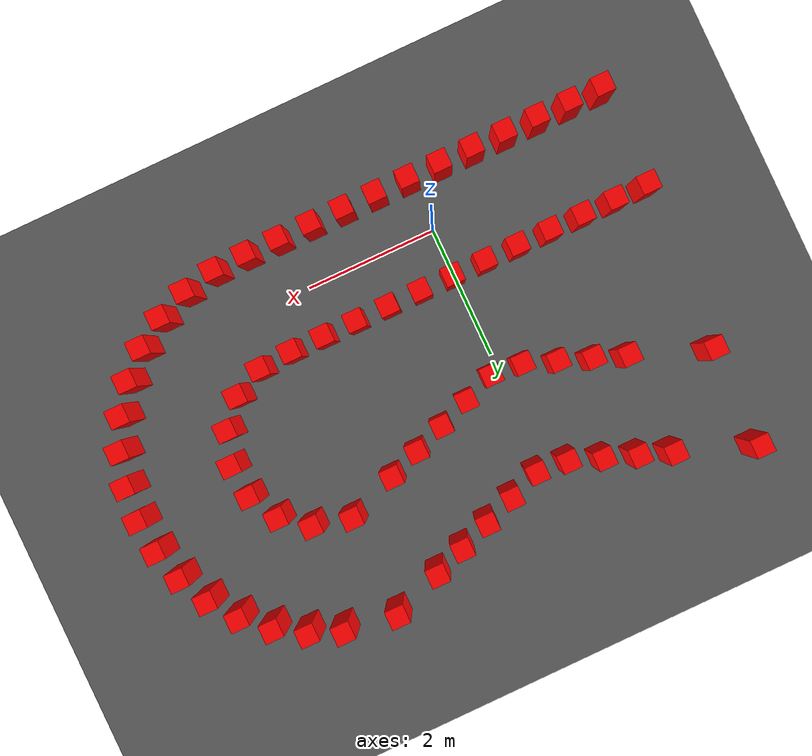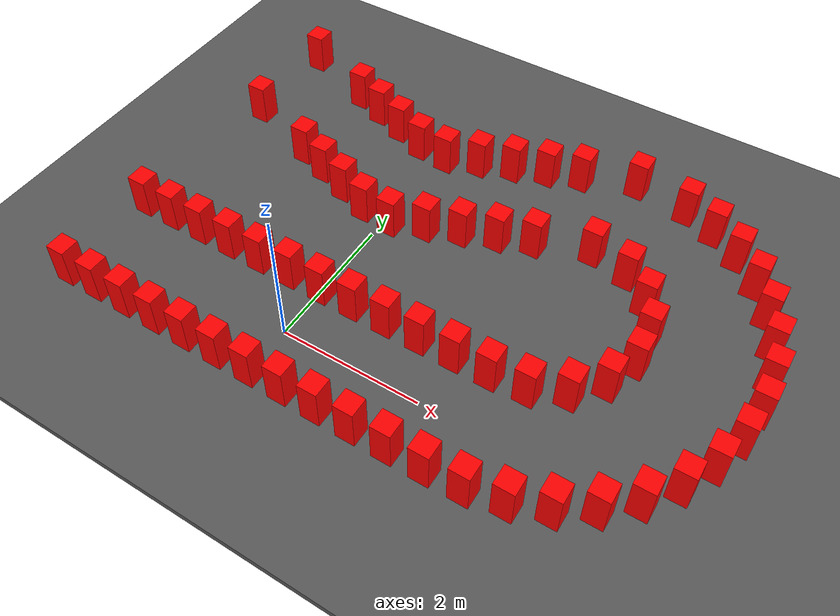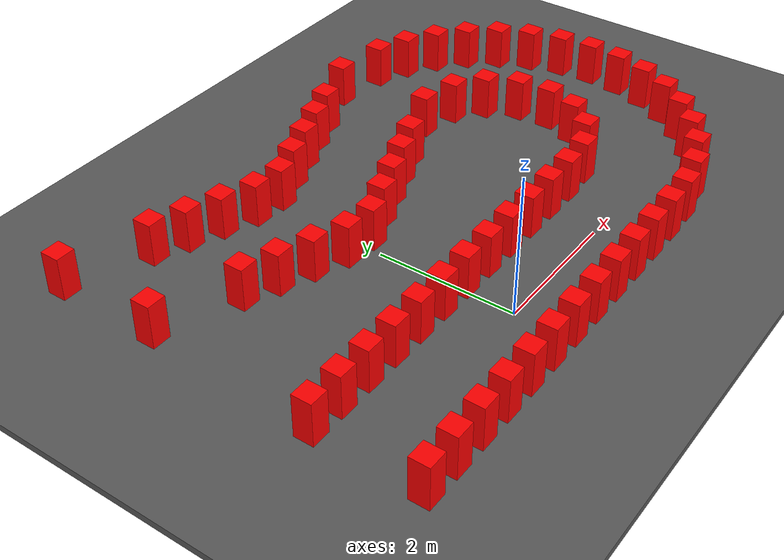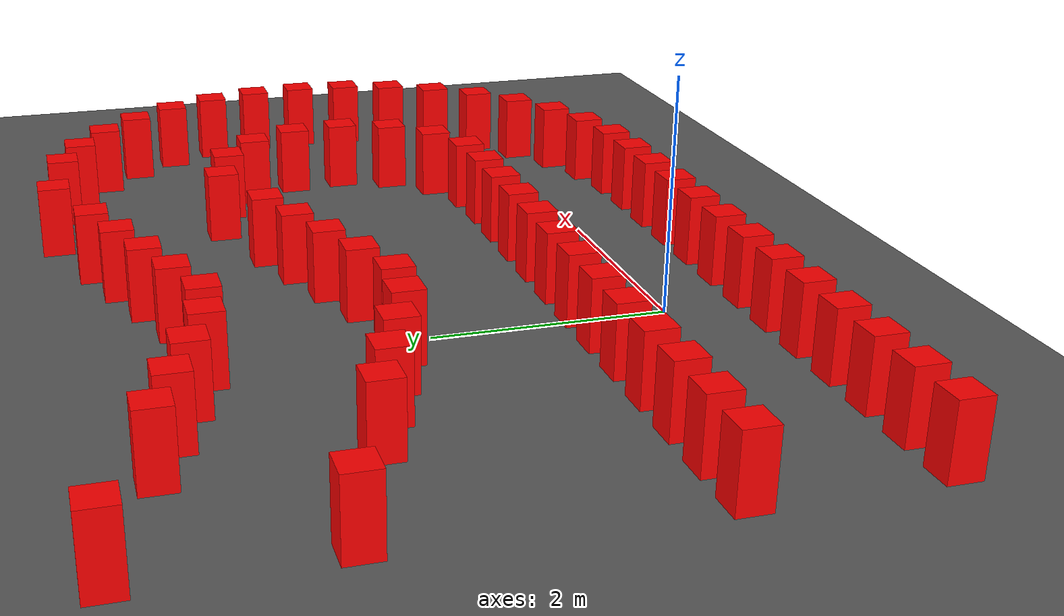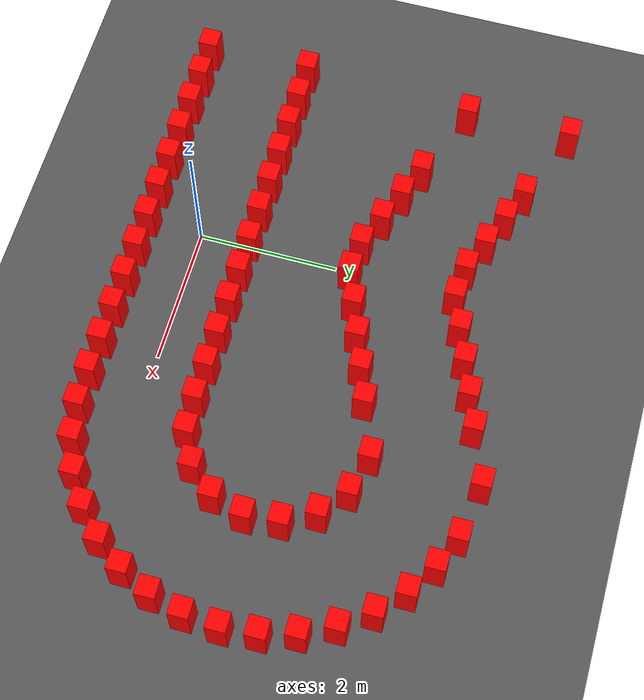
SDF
<sdf version="1.6">
 <world name="prototype">
  <model name="ground">
   <static>true</static>
   <pose>0 0 -0.05 0 0 0</pose>
   <link name="body">
    <visual name="visual">
     <geometry><box><size>200 200 0.1</size></box></geometry>
     <material><ambient>.35 .35 .35 1</ambient><diffuse>.35 .35 .35 1</diffuse></material>
    </visual>
    <collision name="collision"><geometry><box><size>200 200 0.1</size></box></geometry></collision>
   </link>
  </model>
  <model name="cone_proxy_c11">
   <static>true</static>
   <pose>-2.9774 -0.7559 0.315 0 0 0</pose>
   <link name="body">
    <visual name="visual">
     <geometry><box><size>.28 .28 .63</size></box></geometry>
     <material><ambient>1 0 0 1</ambient><diffuse>1 0 0 1</diffuse></material>
    </visual>
    <collision name="collision"><geometry><box><size>.28 .28 .63</size></box></geometry></collision>
   </link>
  </model>
  <model name="cone_proxy_c12">
   <static>true</static>
   <pose>-2.4734 -0.7559 0.315 0 0 0</pose>
   <link name="body">
    <visual name="visual">
     <geometry><box><size>.28 .28 .63</size></box></geometry>
     <material><ambient>1 0 0 1</ambient><diffuse>1 0 0 1</diffuse></material>
    </visual>
    <collision name="collision"><geometry><box><size>.28 .28 .63</size></box></geometry></collision>
   </link>
  </model>
  <model name="cone_proxy_c13">
   <static>true</static>
   <pose>-1.9695 -0.7559 0.315 0 0 0</pose>
   <link name="body">
    <visual name="visual">
     <geometry><box><size>.28 .28 .63</size></box></geometry>
     <material><ambient>1 0 0 1</ambient><diffuse>1 0 0 1</diffuse></material>
    </visual>
    <collision name="collision"><geometry><box><size>.28 .28 .63</size></box></geometry></collision>
   </link>
  </model>
  <model name="cone_proxy_c14">
   <static>true</static>
   <pose>-1.4655 -0.7559 0.315 0 0 0</pose>
   <link name="body">
    <visual name="visual">
     <geometry><box><size>.28 .28 .63</size></box></geometry>
     <material><ambient>1 0 0 1</ambient><diffuse>1 0 0 1</diffuse></material>
    </visual>
    <collision name="collision"><geometry><box><size>.28 .28 .63</size></box></geometry></collision>
   </link>
  </model>
  <model name="cone_proxy_c15">
   <static>true</static>
   <pose>-0.9616 -0.7559 0.315 0 0 0</pose>
   <link name="body">
    <visual name="visual">
     <geometry><box><size>.28 .28 .63</size></box></geometry>
     <material><ambient>1 0 0 1</ambient><diffuse>1 0 0 1</diffuse></material>
    </visual>
    <collision name="collision"><geometry><box><size>.28 .28 .63</size></box></geometry></collision>
   </link>
  </model>
  <model name="cone_proxy_c16">
   <static>true</static>
   <pose>-0.4576 -0.7559 0.315 0 0 0</pose>
   <link name="body">
    <visual name="visual">
     <geometry><box><size>.28 .28 .63</size></box></geometry>
     <material><ambient>1 0 0 1</ambient><diffuse>1 0 0 1</diffuse></material>
    </visual>
    <collision name="collision"><geometry><box><size>.28 .28 .63</size></box></geometry></collision>
   </link>
  </model>
  <model name="cone_proxy_c17">
   <static>true</static>
   <pose>0.0463 -0.7559 0.315 0 0 0</pose>
   <link name="body">
    <visual name="visual">
     <geometry><box><size>.28 .28 .63</size></box></geometry>
     <material><ambient>1 0 0 1</ambient><diffuse>1 0 0 1</diffuse></material>
    </visual>
    <collision name="collision"><geometry><box><size>.28 .28 .63</size></box></geometry></collision>
   </link>
  </model>
  <model name="cone_proxy_c18">
   <static>true</static>
   <pose>0.5502 -0.7559 0.315 0 0 0</pose>
   <link name="body">
    <visual name="visual">
     <geometry><box><size>.28 .28 .63</size></box></geometry>
     <material><ambient>1 0 0 1</ambient><diffuse>1 0 0 1</diffuse></material>
    </visual>
    <collision name="collision"><geometry><box><size>.28 .28 .63</size></box></geometry></collision>
   </link>
  </model>
  <model name="cone_proxy_c19">
   <static>true</static>
   <pose>1.0542 -0.7559 0.315 0 0 0</pose>
   <link name="body">
    <visual name="visual">
     <geometry><box><size>.28 .28 .63</size></box></geometry>
     <material><ambient>1 0 0 1</ambient><diffuse>1 0 0 1</diffuse></material>
    </visual>
    <collision name="collision"><geometry><box><size>.28 .28 .63</size></box></geometry></collision>
   </link>
  </model>
  <model name="cone_proxy_c20">
   <static>true</static>
   <pose>1.5581 -0.7559 0.315 0 0 0</pose>
   <link name="body">
    <visual name="visual">
     <geometry><box><size>.28 .28 .63</size></box></geometry>
     <material><ambient>1 0 0 1</ambient><diffuse>1 0 0 1</diffuse></material>
    </visual>
    <collision name="collision"><geometry><box><size>.28 .28 .63</size></box></geometry></collision>
   </link>
  </model>
  <model name="cone_proxy_c21">
   <static>true</static>
   <pose>2.0621 -0.7559 0.315 0 0 0</pose>
   <link name="body">
    <visual name="visual">
     <geometry><box><size>.28 .28 .63</size></box></geometry>
     <material><ambient>1 0 0 1</ambient><diffuse>1 0 0 1</diffuse></material>
    </visual>
    <collision name="collision"><geometry><box><size>.28 .28 .63</size></box></geometry></collision>
   </link>
  </model>
  <model name="cone_proxy_c22">
   <static>true</static>
   <pose>2.5660 -0.7559 0.315 0 0 0</pose>
   <link name="body">
    <visual name="visual">
     <geometry><box><size>.28 .28 .63</size></box></geometry>
     <material><ambient>1 0 0 1</ambient><diffuse>1 0 0 1</diffuse></material>
    </visual>
    <collision name="collision"><geometry><box><size>.28 .28 .63</size></box></geometry></collision>
   </link>
  </model>
  <model name="cone_proxy_c23">
   <static>true</static>
   <pose>3.0693 -0.7380 0.315 0 0 0</pose>
   <link name="body">
    <visual name="visual">
     <geometry><box><size>.28 .28 .63</size></box></geometry>
     <material><ambient>1 0 0 1</ambient><diffuse>1 0 0 1</diffuse></material>
    </visual>
    <collision name="collision"><geometry><box><size>.28 .28 .63</size></box></geometry></collision>
   </link>
  </model>
  <model name="cone_proxy_c24">
   <static>true</static>
   <pose>3.5624 -0.6387 0.315 0 0 0</pose>
   <link name="body">
    <visual name="visual">
     <geometry><box><size>.28 .28 .63</size></box></geometry>
     <material><ambient>1 0 0 1</ambient><diffuse>1 0 0 1</diffuse></material>
    </visual>
    <collision name="collision"><geometry><box><size>.28 .28 .63</size></box></geometry></collision>
   </link>
  </model>
  <model name="cone_proxy_c25">
   <static>true</static>
   <pose>4.0291 -0.4506 0.315 0 0 0</pose>
   <link name="body">
    <visual name="visual">
     <geometry><box><size>.28 .28 .63</size></box></geometry>
     <material><ambient>1 0 0 1</ambient><diffuse>1 0 0 1</diffuse></material>
    </visual>
    <collision name="collision"><geometry><box><size>.28 .28 .63</size></box></geometry></collision>
   </link>
  </model>
  <model name="cone_proxy_c26">
   <static>true</static>
   <pose>4.4535 -0.1804 0.315 0 0 0</pose>
   <link name="body">
    <visual name="visual">
     <geometry><box><size>.28 .28 .63</size></box></geometry>
     <material><ambient>1 0 0 1</ambient><diffuse>1 0 0 1</diffuse></material>
    </visual>
    <collision name="collision"><geometry><box><size>.28 .28 .63</size></box></geometry></collision>
   </link>
  </model>
  <model name="cone_proxy_c27">
   <static>true</static>
   <pose>4.8231 0.1610 0.315 0 0 0</pose>
   <link name="body">
    <visual name="visual">
     <geometry><box><size>.28 .28 .63</size></box></geometry>
     <material><ambient>1 0 0 1</ambient><diffuse>1 0 0 1</diffuse></material>
    </visual>
    <collision name="collision"><geometry><box><size>.28 .28 .63</size></box></geometry></collision>
   </link>
  </model>
  <model name="cone_proxy_c28">
   <static>true</static>
   <pose>5.1222 0.5657 0.315 0 0 0</pose>
   <link name="body">
    <visual name="visual">
     <geometry><box><size>.28 .28 .63</size></box></geometry>
     <material><ambient>1 0 0 1</ambient><diffuse>1 0 0 1</diffuse></material>
    </visual>
    <collision name="collision"><geometry><box><size>.28 .28 .63</size></box></geometry></collision>
   </link>
  </model>
  <model name="cone_proxy_c29">
   <static>true</static>
   <pose>5.3440 1.0172 0.315 0 0 0</pose>
   <link name="body">
    <visual name="visual">
     <geometry><box><size>.28 .28 .63</size></box></geometry>
     <material><ambient>1 0 0 1</ambient><diffuse>1 0 0 1</diffuse></material>
    </visual>
    <collision name="collision"><geometry><box><size>.28 .28 .63</size></box></geometry></collision>
   </link>
  </model>
  <model name="cone_proxy_c30">
   <static>true</static>
   <pose>5.4806 1.5015 0.315 0 0 0</pose>
   <link name="body">
    <visual name="visual">
     <geometry><box><size>.28 .28 .63</size></box></geometry>
     <material><ambient>1 0 0 1</ambient><diffuse>1 0 0 1</diffuse></material>
    </visual>
    <collision name="collision"><geometry><box><size>.28 .28 .63</size></box></geometry></collision>
   </link>
  </model>
  <model name="cone_proxy_c31">
   <static>true</static>
   <pose>5.5250 2.0027 0.315 0 0 0</pose>
   <link name="body">
    <visual name="visual">
     <geometry><box><size>.28 .28 .63</size></box></geometry>
     <material><ambient>1 0 0 1</ambient><diffuse>1 0 0 1</diffuse></material>
    </visual>
    <collision name="collision"><geometry><box><size>.28 .28 .63</size></box></geometry></collision>
   </link>
  </model>
  <model name="cone_proxy_c32">
   <static>true</static>
   <pose>5.4795 2.5037 0.315 0 0 0</pose>
   <link name="body">
    <visual name="visual">
     <geometry><box><size>.28 .28 .63</size></box></geometry>
     <material><ambient>1 0 0 1</ambient><diffuse>1 0 0 1</diffuse></material>
    </visual>
    <collision name="collision"><geometry><box><size>.28 .28 .63</size></box></geometry></collision>
   </link>
  </model>
  <model name="cone_proxy_c33">
   <static>true</static>
   <pose>5.3422 2.9878 0.315 0 0 0</pose>
   <link name="body">
    <visual name="visual">
     <geometry><box><size>.28 .28 .63</size></box></geometry>
     <material><ambient>1 0 0 1</ambient><diffuse>1 0 0 1</diffuse></material>
    </visual>
    <collision name="collision"><geometry><box><size>.28 .28 .63</size></box></geometry></collision>
   </link>
  </model>
  <model name="cone_proxy_c34">
   <static>true</static>
   <pose>5.1194 3.4388 0.315 0 0 0</pose>
   <link name="body">
    <visual name="visual">
     <geometry><box><size>.28 .28 .63</size></box></geometry>
     <material><ambient>1 0 0 1</ambient><diffuse>1 0 0 1</diffuse></material>
    </visual>
    <collision name="collision"><geometry><box><size>.28 .28 .63</size></box></geometry></collision>
   </link>
  </model>
  <model name="cone_proxy_c35">
   <static>true</static>
   <pose>4.8197 3.8430 0.315 0 0 0</pose>
   <link name="body">
    <visual name="visual">
     <geometry><box><size>.28 .28 .63</size></box></geometry>
     <material><ambient>1 0 0 1</ambient><diffuse>1 0 0 1</diffuse></material>
    </visual>
    <collision name="collision"><geometry><box><size>.28 .28 .63</size></box></geometry></collision>
   </link>
  </model>
  <model name="cone_proxy_c36">
   <static>true</static>
   <pose>4.4494 4.1837 0.315 0 0 0</pose>
   <link name="body">
    <visual name="visual">
     <geometry><box><size>.28 .28 .63</size></box></geometry>
     <material><ambient>1 0 0 1</ambient><diffuse>1 0 0 1</diffuse></material>
    </visual>
    <collision name="collision"><geometry><box><size>.28 .28 .63</size></box></geometry></collision>
   </link>
  </model>
  <model name="cone_proxy_c37">
   <static>true</static>
   <pose>4.0244 4.4530 0.315 0 0 0</pose>
   <link name="body">
    <visual name="visual">
     <geometry><box><size>.28 .28 .63</size></box></geometry>
     <material><ambient>1 0 0 1</ambient><diffuse>1 0 0 1</diffuse></material>
    </visual>
    <collision name="collision"><geometry><box><size>.28 .28 .63</size></box></geometry></collision>
   </link>
  </model>
  <model name="cone_proxy_c38">
   <static>true</static>
   <pose>3.5575 4.6404 0.315 0 0 0</pose>
   <link name="body">
    <visual name="visual">
     <geometry><box><size>.28 .28 .63</size></box></geometry>
     <material><ambient>1 0 0 1</ambient><diffuse>1 0 0 1</diffuse></material>
    </visual>
    <collision name="collision"><geometry><box><size>.28 .28 .63</size></box></geometry></collision>
   </link>
  </model>
  <model name="cone_proxy_c39">
   <static>true</static>
   <pose>2.7707 4.7560 0.315 0 0 0</pose>
   <link name="body">
    <visual name="visual">
     <geometry><box><size>.28 .28 .63</size></box></geometry>
     <material><ambient>1 0 0 1</ambient><diffuse>1 0 0 1</diffuse></material>
    </visual>
    <collision name="collision"><geometry><box><size>.28 .28 .63</size></box></geometry></collision>
   </link>
  </model>
  <model name="cone_proxy_c40">
   <static>true</static>
   <pose>-2.8514 4.7560 0.315 0 0 0</pose>
   <link name="body">
    <visual name="visual">
     <geometry><box><size>.28 .28 .63</size></box></geometry>
     <material><ambient>1 0 0 1</ambient><diffuse>1 0 0 1</diffuse></material>
    </visual>
    <collision name="collision"><geometry><box><size>.28 .28 .63</size></box></geometry></collision>
   </link>
  </model>
  <model name="cone_proxy_c80">
   <static>true</static>
   <pose>-2.9774 0.7559 0.315 0 0 0</pose>
   <link name="body">
    <visual name="visual">
     <geometry><box><size>.28 .28 .63</size></box></geometry>
     <material><ambient>1 0 0 1</ambient><diffuse>1 0 0 1</diffuse></material>
    </visual>
    <collision name="collision"><geometry><box><size>.28 .28 .63</size></box></geometry></collision>
   </link>
  </model>
  <model name="cone_proxy_c81">
   <static>true</static>
   <pose>-2.4734 0.7559 0.315 0 0 0</pose>
   <link name="body">
    <visual name="visual">
     <geometry><box><size>.28 .28 .63</size></box></geometry>
     <material><ambient>1 0 0 1</ambient><diffuse>1 0 0 1</diffuse></material>
    </visual>
    <collision name="collision"><geometry><box><size>.28 .28 .63</size></box></geometry></collision>
   </link>
  </model>
  <model name="cone_proxy_c82">
   <static>true</static>
   <pose>-1.9695 0.7559 0.315 0 0 0</pose>
   <link name="body">
    <visual name="visual">
     <geometry><box><size>.28 .28 .63</size></box></geometry>
     <material><ambient>1 0 0 1</ambient><diffuse>1 0 0 1</diffuse></material>
    </visual>
    <collision name="collision"><geometry><box><size>.28 .28 .63</size></box></geometry></collision>
   </link>
  </model>
  <model name="cone_proxy_c83">
   <static>true</static>
   <pose>-1.4655 0.7559 0.315 0 0 0</pose>
   <link name="body">
    <visual name="visual">
     <geometry><box><size>.28 .28 .63</size></box></geometry>
     <material><ambient>1 0 0 1</ambient><diffuse>1 0 0 1</diffuse></material>
    </visual>
    <collision name="collision"><geometry><box><size>.28 .28 .63</size></box></geometry></collision>
   </link>
  </model>
  <model name="cone_proxy_c84">
   <static>true</static>
   <pose>-0.9616 0.7559 0.315 0 0 0</pose>
   <link name="body">
    <visual name="visual">
     <geometry><box><size>.28 .28 .63</size></box></geometry>
     <material><ambient>1 0 0 1</ambient><diffuse>1 0 0 1</diffuse></material>
    </visual>
    <collision name="collision"><geometry><box><size>.28 .28 .63</size></box></geometry></collision>
   </link>
  </model>
  <model name="cone_proxy_c85">
   <static>true</static>
   <pose>-0.4576 0.7559 0.315 0 0 0</pose>
   <link name="body">
    <visual name="visual">
     <geometry><box><size>.28 .28 .63</size></box></geometry>
     <material><ambient>1 0 0 1</ambient><diffuse>1 0 0 1</diffuse></material>
    </visual>
    <collision name="collision"><geometry><box><size>.28 .28 .63</size></box></geometry></collision>
   </link>
  </model>
  <model name="cone_proxy_c86">
   <static>true</static>
   <pose>0.0463 0.7559 0.315 0 0 0</pose>
   <link name="body">
    <visual name="visual">
     <geometry><box><size>.28 .28 .63</size></box></geometry>
     <material><ambient>1 0 0 1</ambient><diffuse>1 0 0 1</diffuse></material>
    </visual>
    <collision name="collision"><geometry><box><size>.28 .28 .63</size></box></geometry></collision>
   </link>
  </model>
  <model name="cone_proxy_c87">
   <static>true</static>
   <pose>0.5502 0.7559 0.315 0 0 0</pose>
   <link name="body">
    <visual name="visual">
     <geometry><box><size>.28 .28 .63</size></box></geometry>
     <material><ambient>1 0 0 1</ambient><diffuse>1 0 0 1</diffuse></material>
    </visual>
    <collision name="collision"><geometry><box><size>.28 .28 .63</size></box></geometry></collision>
   </link>
  </model>
  <model name="cone_proxy_c88">
   <static>true</static>
   <pose>1.0542 0.7559 0.315 0 0 0</pose>
   <link name="body">
    <visual name="visual">
     <geometry><box><size>.28 .28 .63</size></box></geometry>
     <material><ambient>1 0 0 1</ambient><diffuse>1 0 0 1</diffuse></material>
    </visual>
    <collision name="collision"><geometry><box><size>.28 .28 .63</size></box></geometry></collision>
   </link>
  </model>
  <model name="cone_proxy_c89">
   <static>true</static>
   <pose>1.5581 0.7559 0.315 0 0 0</pose>
   <link name="body">
    <visual name="visual">
     <geometry><box><size>.28 .28 .63</size></box></geometry>
     <material><ambient>1 0 0 1</ambient><diffuse>1 0 0 1</diffuse></material>
    </visual>
    <collision name="collision"><geometry><box><size>.28 .28 .63</size></box></geometry></collision>
   </link>
  </model>
  <model name="cone_proxy_c90">
   <static>true</static>
   <pose>2.0621 0.7559 0.315 0 0 0</pose>
   <link name="body">
    <visual name="visual">
     <geometry><box><size>.28 .28 .63</size></box></geometry>
     <material><ambient>1 0 0 1</ambient><diffuse>1 0 0 1</diffuse></material>
    </visual>
    <collision name="collision"><geometry><box><size>.28 .28 .63</size></box></geometry></collision>
   </link>
  </model>
  <model name="cone_proxy_c91">
   <static>true</static>
   <pose>2.5660 0.7559 0.315 0 0 0</pose>
   <link name="body">
    <visual name="visual">
     <geometry><box><size>.28 .28 .63</size></box></geometry>
     <material><ambient>1 0 0 1</ambient><diffuse>1 0 0 1</diffuse></material>
    </visual>
    <collision name="collision"><geometry><box><size>.28 .28 .63</size></box></geometry></collision>
   </link>
  </model>
  <model name="cone_proxy_c92">
   <static>true</static>
   <pose>3.0670 0.7925 0.315 0 0 0</pose>
   <link name="body">
    <visual name="visual">
     <geometry><box><size>.28 .28 .63</size></box></geometry>
     <material><ambient>1 0 0 1</ambient><diffuse>1 0 0 1</diffuse></material>
    </visual>
    <collision name="collision"><geometry><box><size>.28 .28 .63</size></box></geometry></collision>
   </link>
  </model>
  <model name="cone_proxy_c93">
   <static>true</static>
   <pose>3.5190 1.0068 0.315 0 0 0</pose>
   <link name="body">
    <visual name="visual">
     <geometry><box><size>.28 .28 .63</size></box></geometry>
     <material><ambient>1 0 0 1</ambient><diffuse>1 0 0 1</diffuse></material>
    </visual>
    <collision name="collision"><geometry><box><size>.28 .28 .63</size></box></geometry></collision>
   </link>
  </model>
  <model name="cone_proxy_c94">
   <static>true</static>
   <pose>3.8503 1.3820 0.315 0 0 0</pose>
   <link name="body">
    <visual name="visual">
     <geometry><box><size>.28 .28 .63</size></box></geometry>
     <material><ambient>1 0 0 1</ambient><diffuse>1 0 0 1</diffuse></material>
    </visual>
    <collision name="collision"><geometry><box><size>.28 .28 .63</size></box></geometry></collision>
   </link>
  </model>
  <model name="cone_proxy_c95">
   <static>true</static>
   <pose>4.0063 1.8576 0.315 0 0 0</pose>
   <link name="body">
    <visual name="visual">
     <geometry><box><size>.28 .28 .63</size></box></geometry>
     <material><ambient>1 0 0 1</ambient><diffuse>1 0 0 1</diffuse></material>
    </visual>
    <collision name="collision"><geometry><box><size>.28 .28 .63</size></box></geometry></collision>
   </link>
  </model>
  <model name="cone_proxy_c96">
   <static>true</static>
   <pose>3.9621 2.3560 0.315 0 0 0</pose>
   <link name="body">
    <visual name="visual">
     <geometry><box><size>.28 .28 .63</size></box></geometry>
     <material><ambient>1 0 0 1</ambient><diffuse>1 0 0 1</diffuse></material>
    </visual>
    <collision name="collision"><geometry><box><size>.28 .28 .63</size></box></geometry></collision>
   </link>
  </model>
  <model name="cone_proxy_c97">
   <static>true</static>
   <pose>3.7253 2.7967 0.315 0 0 0</pose>
   <link name="body">
    <visual name="visual">
     <geometry><box><size>.28 .28 .63</size></box></geometry>
     <material><ambient>1 0 0 1</ambient><diffuse>1 0 0 1</diffuse></material>
    </visual>
    <collision name="collision"><geometry><box><size>.28 .28 .63</size></box></geometry></collision>
   </link>
  </model>
  <model name="cone_proxy_c98">
   <static>true</static>
   <pose>3.3341 3.1086 0.315 0 0 0</pose>
   <link name="body">
    <visual name="visual">
     <geometry><box><size>.28 .28 .63</size></box></geometry>
     <material><ambient>1 0 0 1</ambient><diffuse>1 0 0 1</diffuse></material>
    </visual>
    <collision name="collision"><geometry><box><size>.28 .28 .63</size></box></geometry></collision>
   </link>
  </model>
  <model name="cone_proxy_c99">
   <static>true</static>
   <pose>2.7707 3.2441 0.315 0 0 0</pose>
   <link name="body">
    <visual name="visual">
     <geometry><box><size>.28 .28 .63</size></box></geometry>
     <material><ambient>1 0 0 1</ambient><diffuse>1 0 0 1</diffuse></material>
    </visual>
    <collision name="collision"><geometry><box><size>.28 .28 .63</size></box></geometry></collision>
   </link>
  </model>
  <model name="cone_proxy_c100">
   <static>true</static>
   <pose>-2.8514 3.2441 0.315 0 0 0</pose>
   <link name="body">
    <visual name="visual">
     <geometry><box><size>.28 .28 .63</size></box></geometry>
     <material><ambient>1 0 0 1</ambient><diffuse>1 0 0 1</diffuse></material>
    </visual>
    <collision name="collision"><geometry><box><size>.28 .28 .63</size></box></geometry></collision>
   </link>
  </model>
  <model name="cone_proxy_c120">
   <static>true</static>
   <pose>2.0199 4.4733 0.315 0 0 0</pose>
   <link name="body">
    <visual name="visual">
     <geometry><box><size>.28 .28 .63</size></box></geometry>
     <material><ambient>1 0 0 1</ambient><diffuse>1 0 0 1</diffuse></material>
    </visual>
    <collision name="collision"><geometry><box><size>.28 .28 .63</size></box></geometry></collision>
   </link>
  </model>
  <model name="cone_proxy_c121">
   <static>true</static>
   <pose>1.5520 4.2972 0.315 0 0 0</pose>
   <link name="body">
    <visual name="visual">
     <geometry><box><size>.28 .28 .63</size></box></geometry>
     <material><ambient>1 0 0 1</ambient><diffuse>1 0 0 1</diffuse></material>
    </visual>
    <collision name="collision"><geometry><box><size>.28 .28 .63</size></box></geometry></collision>
   </link>
  </model>
  <model name="cone_proxy_c122">
   <static>true</static>
   <pose>1.0840 4.1211 0.315 0 0 0</pose>
   <link name="body">
    <visual name="visual">
     <geometry><box><size>.28 .28 .63</size></box></geometry>
     <material><ambient>1 0 0 1</ambient><diffuse>1 0 0 1</diffuse></material>
    </visual>
    <collision name="collision"><geometry><box><size>.28 .28 .63</size></box></geometry></collision>
   </link>
  </model>
  <model name="cone_proxy_c123">
   <static>true</static>
   <pose>0.6161 3.9450 0.315 0 0 0</pose>
   <link name="body">
    <visual name="visual">
     <geometry><box><size>.28 .28 .63</size></box></geometry>
     <material><ambient>1 0 0 1</ambient><diffuse>1 0 0 1</diffuse></material>
    </visual>
    <collision name="collision"><geometry><box><size>.28 .28 .63</size></box></geometry></collision>
   </link>
  </model>
  <model name="cone_proxy_c124">
   <static>true</static>
   <pose>0.1481 3.7688 0.315 0 0 0</pose>
   <link name="body">
    <visual name="visual">
     <geometry><box><size>.28 .28 .63</size></box></geometry>
     <material><ambient>1 0 0 1</ambient><diffuse>1 0 0 1</diffuse></material>
    </visual>
    <collision name="collision"><geometry><box><size>.28 .28 .63</size></box></geometry></collision>
   </link>
  </model>
  <model name="cone_proxy_c125">
   <static>true</static>
   <pose>-0.3200 3.8085 0.315 0 0 0</pose>
   <link name="body">
    <visual name="visual">
     <geometry><box><size>.28 .28 .63</size></box></geometry>
     <material><ambient>1 0 0 1</ambient><diffuse>1 0 0 1</diffuse></material>
    </visual>
    <collision name="collision"><geometry><box><size>.28 .28 .63</size></box></geometry></collision>
   </link>
  </model>
  <model name="cone_proxy_c126">
   <static>true</static>
   <pose>-0.7883 3.9838 0.315 0 0 0</pose>
   <link name="body">
    <visual name="visual">
     <geometry><box><size>.28 .28 .63</size></box></geometry>
     <material><ambient>1 0 0 1</ambient><diffuse>1 0 0 1</diffuse></material>
    </visual>
    <collision name="collision"><geometry><box><size>.28 .28 .63</size></box></geometry></collision>
   </link>
  </model>
  <model name="cone_proxy_c127">
   <static>true</static>
   <pose>-1.2565 4.1590 0.315 0 0 0</pose>
   <link name="body">
    <visual name="visual">
     <geometry><box><size>.28 .28 .63</size></box></geometry>
     <material><ambient>1 0 0 1</ambient><diffuse>1 0 0 1</diffuse></material>
    </visual>
    <collision name="collision"><geometry><box><size>.28 .28 .63</size></box></geometry></collision>
   </link>
  </model>
  <model name="cone_proxy_c128">
   <static>true</static>
   <pose>-1.7248 4.3343 0.315 0 0 0</pose>
   <link name="body">
    <visual name="visual">
     <geometry><box><size>.28 .28 .63</size></box></geometry>
     <material><ambient>1 0 0 1</ambient><diffuse>1 0 0 1</diffuse></material>
    </visual>
    <collision name="collision"><geometry><box><size>.28 .28 .63</size></box></geometry></collision>
   </link>
  </model>
  <model name="cone_proxy_c129">
   <static>true</static>
   <pose>2.0212 2.9620 0.315 0 0 0</pose>
   <link name="body">
    <visual name="visual">
     <geometry><box><size>.28 .28 .63</size></box></geometry>
     <material><ambient>1 0 0 1</ambient><diffuse>1 0 0 1</diffuse></material>
    </visual>
    <collision name="collision"><geometry><box><size>.28 .28 .63</size></box></geometry></collision>
   </link>
  </model>
  <model name="cone_proxy_c130">
   <static>true</static>
   <pose>1.5532 2.7859 0.315 0 0 0</pose>
   <link name="body">
    <visual name="visual">
     <geometry><box><size>.28 .28 .63</size></box></geometry>
     <material><ambient>1 0 0 1</ambient><diffuse>1 0 0 1</diffuse></material>
    </visual>
    <collision name="collision"><geometry><box><size>.28 .28 .63</size></box></geometry></collision>
   </link>
  </model>
  <model name="cone_proxy_c131">
   <static>true</static>
   <pose>1.0853 2.6098 0.315 0 0 0</pose>
   <link name="body">
    <visual name="visual">
     <geometry><box><size>.28 .28 .63</size></box></geometry>
     <material><ambient>1 0 0 1</ambient><diffuse>1 0 0 1</diffuse></material>
    </visual>
    <collision name="collision"><geometry><box><size>.28 .28 .63</size></box></geometry></collision>
   </link>
  </model>
  <model name="cone_proxy_c132">
   <static>true</static>
   <pose>0.6174 2.4336 0.315 0 0 0</pose>
   <link name="body">
    <visual name="visual">
     <geometry><box><size>.28 .28 .63</size></box></geometry>
     <material><ambient>1 0 0 1</ambient><diffuse>1 0 0 1</diffuse></material>
    </visual>
    <collision name="collision"><geometry><box><size>.28 .28 .63</size></box></geometry></collision>
   </link>
  </model>
  <model name="cone_proxy_c133">
   <static>true</static>
   <pose>0.1494 2.2574 0.315 0 0 0</pose>
   <link name="body">
    <visual name="visual">
     <geometry><box><size>.28 .28 .63</size></box></geometry>
     <material><ambient>1 0 0 1</ambient><diffuse>1 0 0 1</diffuse></material>
    </visual>
    <collision name="collision"><geometry><box><size>.28 .28 .63</size></box></geometry></collision>
   </link>
  </model>
  <model name="cone_proxy_c134">
   <static>true</static>
   <pose>-0.3187 2.2962 0.315 0 0 0</pose>
   <link name="body">
    <visual name="visual">
     <geometry><box><size>.28 .28 .63</size></box></geometry>
     <material><ambient>1 0 0 1</ambient><diffuse>1 0 0 1</diffuse></material>
    </visual>
    <collision name="collision"><geometry><box><size>.28 .28 .63</size></box></geometry></collision>
   </link>
  </model>
  <model name="cone_proxy_c135">
   <static>true</static>
   <pose>-0.7870 2.4715 0.315 0 0 0</pose>
   <link name="body">
    <visual name="visual">
     <geometry><box><size>.28 .28 .63</size></box></geometry>
     <material><ambient>1 0 0 1</ambient><diffuse>1 0 0 1</diffuse></material>
    </visual>
    <collision name="collision"><geometry><box><size>.28 .28 .63</size></box></geometry></collision>
   </link>
  </model>
  <model name="cone_proxy_c136">
   <static>true</static>
   <pose>-1.2553 2.6468 0.315 0 0 0</pose>
   <link name="body">
    <visual name="visual">
     <geometry><box><size>.28 .28 .63</size></box></geometry>
     <material><ambient>1 0 0 1</ambient><diffuse>1 0 0 1</diffuse></material>
    </visual>
    <collision name="collision"><geometry><box><size>.28 .28 .63</size></box></geometry></collision>
   </link>
  </model>
  <model name="cone_proxy_c137">
   <static>true</static>
   <pose>-1.7235 2.8220 0.315 0 0 0</pose>
   <link name="body">
    <visual name="visual">
     <geometry><box><size>.28 .28 .63</size></box></geometry>
     <material><ambient>1 0 0 1</ambient><diffuse>1 0 0 1</diffuse></material>
    </visual>
    <collision name="collision"><geometry><box><size>.28 .28 .63</size></box></geometry></collision>
   </link>
  </model>
 </world>
</sdf>
